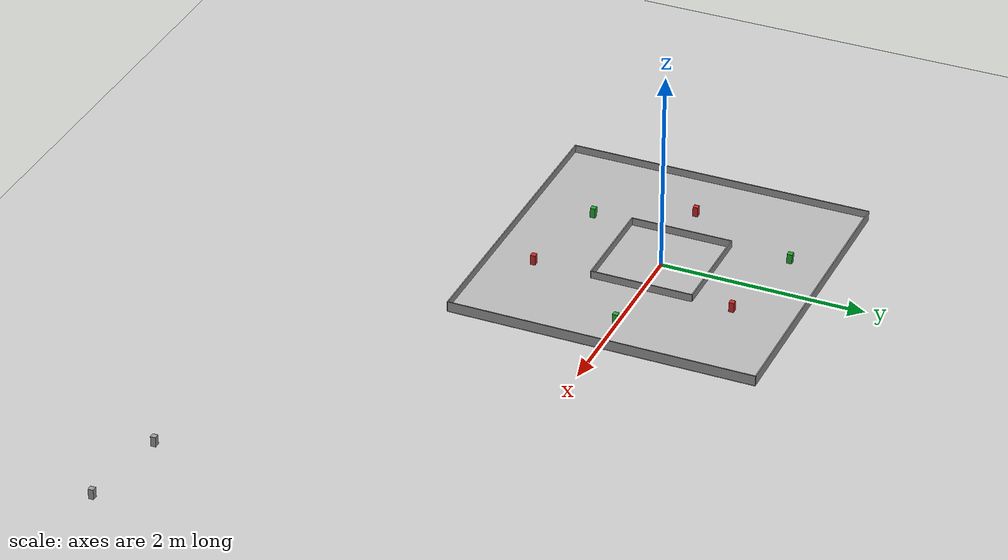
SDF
<sdf version="1.7">
 <world name="default">
  <light name="sun" type="directional">
   <pose>0 0 10 0 -0 0</pose>
   <diffuse>0.8 0.8 0.8 1</diffuse>
   <specular>0.2 0.2 0.2 1</specular>
   <attenuation>
    <range>1000</range>
    <constant>0.9</constant>
    <linear>0.01</linear>
    <quadratic>0.001</quadratic>
   </attenuation>
   <direction>-0.5 0.1 -0.9</direction>
   <spot><inner_angle>0</inner_angle><outer_angle>0</outer_angle><falloff>0</falloff></spot>
  </light>
  <model name="ground_plane">
   <static>1</static>
   <link name="link">
    <collision name="collision">
     <geometry><plane><normal>0 0 1</normal><size>100 100</size></plane></geometry>
     <surface><friction><ode><mu>100</mu><mu2>50</mu2></ode></friction></surface>
    </collision>
    <visual name="visual">
     <cast_shadows>0</cast_shadows>
     <geometry><plane><normal>0 0 1</normal><size>100 100</size></plane></geometry>
     <material>
      <script><uri>file://media/materials/scripts/gazebo.material</uri><name>Gazebo/Grey</name></script>
     </material>
    </visual>
   </link>
  </model>
  <gravity>0 0 -9.8</gravity>
  <magnetic_field>6e-06 2.3e-05 -4.2e-05</magnetic_field>
  <atmosphere type="adiabatic"/>
  <physics type="ode">
   <max_step_size>0.001</max_step_size>
   <real_time_factor>1</real_time_factor>
   <real_time_update_rate>1000</real_time_update_rate>
  </physics>
  <scene><ambient>0.4 0.4 0.4 1</ambient><background>0.7 0.7 0.7 1</background><shadows>1</shadows></scene>
  <audio><device>default</device></audio>
  <spherical_coordinates>
   <surface_model>EARTH_WGS84</surface_model>
   <latitude_deg>0</latitude_deg>
   <longitude_deg>0</longitude_deg>
   <elevation>0</elevation>
   <heading_deg>0</heading_deg>
  </spherical_coordinates>
  <model name="wro_platform">
   <static>1</static>
   <link name="platform_link">
    <visual name="platform_visual">
     <geometry><box><size>3 3 0.05</size></box></geometry>
     <material>
      <script>
       <uri>model://wro_texture/materials/scripts</uri>
       <uri>model://wro_texture/materials/textures</uri>
       <name>wro/field</name>
      </script>
     </material>
    </visual>
    <collision name="platform_collision"><geometry><box><size>3 3 0.05</size></box></geometry></collision>
   </link>
  </model>
  <model name="WRO_FIELD_2025">
   <link name="link_1">
    <inertial>
     <mass>1</mass>
     <inertia>
      <ixx>0.166667</ixx>
      <ixy>0</ixy>
      <ixz>0</ixz>
      <iyy>0.166667</iyy>
      <iyz>0</iyz>
      <izz>0.166667</izz>
     </inertia>
    </inertial>
    <pose>0 1.5 0.05 0 -0 0</pose>
    <self_collide>1</self_collide>
    <visual name="visual">
     <geometry><box><size>3 0.01 0.1</size></box></geometry>
     <material>
      <lighting>1</lighting>
      <script><uri>file://media/materials/scripts/gazebo.material</uri><name>Gazebo/Grey</name></script>
      <shader type="pixel"><normal_map>__default__</normal_map></shader>
      <ambient>0.3 0.3 0.3 1</ambient>
      <diffuse>0.7 0.7 0.7 1</diffuse>
      <specular>0.01 0.01 0.01 1</specular>
      <emissive>0 0 0 1</emissive>
     </material>
    </visual>
    <collision name="collision_1">
     <geometry><box><size>3 0.01 0.1</size></box></geometry>
     <surface>
      <friction>
       <ode><mu>1</mu><mu2>1</mu2><fdir1>0 0 0</fdir1><slip1>0</slip1><slip2>0</slip2></ode>
       <torsional>
        <coefficient>1</coefficient>
        <patch_radius>0</patch_radius>
        <surface_radius>0</surface_radius>
        <use_patch_radius>1</use_patch_radius>
        <ode><slip>0</slip></ode>
       </torsional>
      </friction>
      <bounce><restitution_coefficient>0</restitution_coefficient><threshold>1e+06</threshold></bounce>
      <contact>
       <collide_without_contact>0</collide_without_contact>
       <collide_without_contact_bitmask>1</collide_without_contact_bitmask>
       <collide_bitmask>1</collide_bitmask>
       <ode>
        <soft_cfm>0</soft_cfm>
        <soft_erp>0.2</soft_erp>
        <kp>1e+13</kp>
        <kd>1</kd>
        <max_vel>0.01</max_vel>
        <min_depth>0</min_depth>
       </ode>
       <bullet>
        <split_impulse>1</split_impulse>
        <split_impulse_penetration_threshold>-0.01</split_impulse_penetration_threshold>
        <soft_cfm>0</soft_cfm>
        <soft_erp>0.2</soft_erp>
        <kp>1e+13</kp>
        <kd>1</kd>
       </bullet>
      </contact>
     </surface>
    </collision>
   </link>
   <link name="link_1_clone">
    <inertial>
     <mass>1</mass>
     <inertia>
      <ixx>0.166667</ixx>
      <ixy>0</ixy>
      <ixz>0</ixz>
      <iyy>0.166667</iyy>
      <iyz>0</iyz>
      <izz>0.166667</izz>
     </inertia>
    </inertial>
    <pose>-1.5 0 0.05 0 -0 1.5708</pose>
    <visual name="visual">
     <geometry><box><size>3 0.01 0.1</size></box></geometry>
     <material>
      <lighting>1</lighting>
      <script><uri>file://media/materials/scripts/gazebo.material</uri><name>Gazebo/Grey</name></script>
      <shader type="pixel"><normal_map>__default__</normal_map></shader>
      <ambient>0.3 0.3 0.3 1</ambient>
      <diffuse>0.7 0.7 0.7 1</diffuse>
      <specular>0.01 0.01 0.01 1</specular>
      <emissive>0 0 0 1</emissive>
     </material>
    </visual>
    <collision name="collision_1">
     <geometry><box><size>3 0.01 0.1</size></box></geometry>
     <surface>
      <friction>
       <ode><mu>1</mu><mu2>1</mu2><fdir1>0 0 0</fdir1><slip1>0</slip1><slip2>0</slip2></ode>
       <torsional>
        <coefficient>1</coefficient>
        <patch_radius>0</patch_radius>
        <surface_radius>0</surface_radius>
        <use_patch_radius>1</use_patch_radius>
        <ode><slip>0</slip></ode>
       </torsional>
      </friction>
      <bounce><restitution_coefficient>0</restitution_coefficient><threshold>1e+06</threshold></bounce>
      <contact>
       <collide_without_contact>0</collide_without_contact>
       <collide_without_contact_bitmask>1</collide_without_contact_bitmask>
       <collide_bitmask>1</collide_bitmask>
       <ode>
        <soft_cfm>0</soft_cfm>
        <soft_erp>0.2</soft_erp>
        <kp>1e+13</kp>
        <kd>1</kd>
        <max_vel>0.01</max_vel>
        <min_depth>0</min_depth>
       </ode>
       <bullet>
        <split_impulse>1</split_impulse>
        <split_impulse_penetration_threshold>-0.01</split_impulse_penetration_threshold>
        <soft_cfm>0</soft_cfm>
        <soft_erp>0.2</soft_erp>
        <kp>1e+13</kp>
        <kd>1</kd>
       </bullet>
      </contact>
     </surface>
    </collision>
   </link>
   <link name="link_1_clone_0">
    <inertial>
     <mass>1</mass>
     <inertia>
      <ixx>0.166667</ixx>
      <ixy>0</ixy>
      <ixz>0</ixz>
      <iyy>0.166667</iyy>
      <iyz>0</iyz>
      <izz>0.166667</izz>
     </inertia>
    </inertial>
    <pose>1.5 0 0.05 0 -0 1.5708</pose>
    <visual name="visual">
     <geometry><box><size>3 0.01 0.1</size></box></geometry>
     <material>
      <lighting>1</lighting>
      <script><uri>file://media/materials/scripts/gazebo.material</uri><name>Gazebo/Grey</name></script>
      <shader type="pixel"><normal_map>__default__</normal_map></shader>
      <ambient>0.3 0.3 0.3 1</ambient>
      <diffuse>0.7 0.7 0.7 1</diffuse>
      <specular>0.01 0.01 0.01 1</specular>
      <emissive>0 0 0 1</emissive>
     </material>
    </visual>
    <collision name="collision_1">
     <geometry><box><size>3 0.01 0.1</size></box></geometry>
     <surface>
      <friction>
       <ode><mu>1</mu><mu2>1</mu2><fdir1>0 0 0</fdir1><slip1>0</slip1><slip2>0</slip2></ode>
       <torsional>
        <coefficient>1</coefficient>
        <patch_radius>0</patch_radius>
        <surface_radius>0</surface_radius>
        <use_patch_radius>1</use_patch_radius>
        <ode><slip>0</slip></ode>
       </torsional>
      </friction>
      <bounce><restitution_coefficient>0</restitution_coefficient><threshold>1e+06</threshold></bounce>
      <contact>
       <collide_without_contact>0</collide_without_contact>
       <collide_without_contact_bitmask>1</collide_without_contact_bitmask>
       <collide_bitmask>1</collide_bitmask>
       <ode>
        <soft_cfm>0</soft_cfm>
        <soft_erp>0.2</soft_erp>
        <kp>1e+13</kp>
        <kd>1</kd>
        <max_vel>0.01</max_vel>
        <min_depth>0</min_depth>
       </ode>
       <bullet>
        <split_impulse>1</split_impulse>
        <split_impulse_penetration_threshold>-0.01</split_impulse_penetration_threshold>
        <soft_cfm>0</soft_cfm>
        <soft_erp>0.2</soft_erp>
        <kp>1e+13</kp>
        <kd>1</kd>
       </bullet>
      </contact>
     </surface>
    </collision>
   </link>
   <link name="link_1_clone_0_clone">
    <inertial>
     <mass>1</mass>
     <inertia>
      <ixx>0.166667</ixx>
      <ixy>0</ixy>
      <ixz>0</ixz>
      <iyy>0.166667</iyy>
      <iyz>0</iyz>
      <izz>0.166667</izz>
     </inertia>
    </inertial>
    <pose>0.5 0 0.05 0 -0 1.5708</pose>
    <visual name="visual">
     <geometry><box><size>1 0.01 0.1</size></box></geometry>
     <material>
      <lighting>1</lighting>
      <script><uri>file://media/materials/scripts/gazebo.material</uri><name>Gazebo/Grey</name></script>
      <shader type="pixel"><normal_map>__default__</normal_map></shader>
      <ambient>0.3 0.3 0.3 1</ambient>
      <diffuse>0.7 0.7 0.7 1</diffuse>
      <specular>0.01 0.01 0.01 1</specular>
      <emissive>0 0 0 1</emissive>
     </material>
    </visual>
    <collision name="collision_2">
     <geometry><box><size>1 0.01 0.1</size></box></geometry>
     <surface>
      <friction>
       <ode><mu>1</mu><mu2>1</mu2><fdir1>0 0 0</fdir1><slip1>0</slip1><slip2>0</slip2></ode>
       <torsional>
        <coefficient>1</coefficient>
        <patch_radius>0</patch_radius>
        <surface_radius>0</surface_radius>
        <use_patch_radius>1</use_patch_radius>
        <ode><slip>0</slip></ode>
       </torsional>
      </friction>
      <bounce><restitution_coefficient>0</restitution_coefficient><threshold>1e+06</threshold></bounce>
      <contact>
       <collide_without_contact>0</collide_without_contact>
       <collide_without_contact_bitmask>1</collide_without_contact_bitmask>
       <collide_bitmask>1</collide_bitmask>
       <ode>
        <soft_cfm>0</soft_cfm>
        <soft_erp>0.2</soft_erp>
        <kp>1e+13</kp>
        <kd>1</kd>
        <max_vel>0.01</max_vel>
        <min_depth>0</min_depth>
       </ode>
       <bullet>
        <split_impulse>1</split_impulse>
        <split_impulse_penetration_threshold>-0.01</split_impulse_penetration_threshold>
        <soft_cfm>0</soft_cfm>
        <soft_erp>0.2</soft_erp>
        <kp>1e+13</kp>
        <kd>1</kd>
       </bullet>
      </contact>
     </surface>
    </collision>
   </link>
   <link name="link_1_clone_1">
    <inertial>
     <mass>1</mass>
     <inertia>
      <ixx>0.166667</ixx>
      <ixy>0</ixy>
      <ixz>0</ixz>
      <iyy>0.166667</iyy>
      <iyz>0</iyz>
      <izz>0.166667</izz>
     </inertia>
    </inertial>
    <pose>0 -1.5 0.05 0 0 -3.14139</pose>
    <visual name="visual">
     <geometry><box><size>3 0.01 0.1</size></box></geometry>
     <material>
      <lighting>1</lighting>
      <script><uri>file://media/materials/scripts/gazebo.material</uri><name>Gazebo/Grey</name></script>
      <shader type="pixel"><normal_map>__default__</normal_map></shader>
      <ambient>0.3 0.3 0.3 1</ambient>
      <diffuse>0.7 0.7 0.7 1</diffuse>
      <specular>0.01 0.01 0.01 1</specular>
      <emissive>0 0 0 1</emissive>
     </material>
    </visual>
    <collision name="collision_1">
     <geometry><box><size>3 0.01 0.1</size></box></geometry>
     <surface>
      <friction>
       <ode><mu>1</mu><mu2>1</mu2><fdir1>0 0 0</fdir1><slip1>0</slip1><slip2>0</slip2></ode>
       <torsional>
        <coefficient>1</coefficient>
        <patch_radius>0</patch_radius>
        <surface_radius>0</surface_radius>
        <use_patch_radius>1</use_patch_radius>
        <ode><slip>0</slip></ode>
       </torsional>
      </friction>
      <bounce><restitution_coefficient>0</restitution_coefficient><threshold>1e+06</threshold></bounce>
      <contact>
       <collide_without_contact>0</collide_without_contact>
       <collide_without_contact_bitmask>1</collide_without_contact_bitmask>
       <collide_bitmask>1</collide_bitmask>
       <ode>
        <soft_cfm>0</soft_cfm>
        <soft_erp>0.2</soft_erp>
        <kp>1e+13</kp>
        <kd>1</kd>
        <max_vel>0.01</max_vel>
        <min_depth>0</min_depth>
       </ode>
       <bullet>
        <split_impulse>1</split_impulse>
        <split_impulse_penetration_threshold>-0.01</split_impulse_penetration_threshold>
        <soft_cfm>0</soft_cfm>
        <soft_erp>0.2</soft_erp>
        <kp>1e+13</kp>
        <kd>1</kd>
       </bullet>
      </contact>
     </surface>
    </collision>
   </link>
   <link name="link_1_clone_1_clone">
    <inertial>
     <mass>1</mass>
     <inertia>
      <ixx>0.166667</ixx>
      <ixy>0</ixy>
      <ixz>0</ixz>
      <iyy>0.166667</iyy>
      <iyz>0</iyz>
      <izz>0.166667</izz>
     </inertia>
    </inertial>
    <pose>0 -0.5 0.05 0 0 -3.14139</pose>
    <visual name="visual">
     <geometry><box><size>1 0.01 0.1</size></box></geometry>
     <material>
      <lighting>1</lighting>
      <script><uri>file://media/materials/scripts/gazebo.material</uri><name>Gazebo/Grey</name></script>
      <shader type="pixel"><normal_map>__default__</normal_map></shader>
      <ambient>0.3 0.3 0.3 1</ambient>
      <diffuse>0.7 0.7 0.7 1</diffuse>
      <specular>0.01 0.01 0.01 1</specular>
      <emissive>0 0 0 1</emissive>
     </material>
    </visual>
    <collision name="collision_2">
     <geometry><box><size>1 0.01 0.1</size></box></geometry>
     <surface>
      <friction>
       <ode><mu>1</mu><mu2>1</mu2><fdir1>0 0 0</fdir1><slip1>0</slip1><slip2>0</slip2></ode>
       <torsional>
        <coefficient>1</coefficient>
        <patch_radius>0</patch_radius>
        <surface_radius>0</surface_radius>
        <use_patch_radius>1</use_patch_radius>
        <ode><slip>0</slip></ode>
       </torsional>
      </friction>
      <bounce><restitution_coefficient>0</restitution_coefficient><threshold>1e+06</threshold></bounce>
      <contact>
       <collide_without_contact>0</collide_without_contact>
       <collide_without_contact_bitmask>1</collide_without_contact_bitmask>
       <collide_bitmask>1</collide_bitmask>
       <ode>
        <soft_cfm>0</soft_cfm>
        <soft_erp>0.2</soft_erp>
        <kp>1e+13</kp>
        <kd>1</kd>
        <max_vel>0.01</max_vel>
        <min_depth>0</min_depth>
       </ode>
       <bullet>
        <split_impulse>1</split_impulse>
        <split_impulse_penetration_threshold>-0.01</split_impulse_penetration_threshold>
        <soft_cfm>0</soft_cfm>
        <soft_erp>0.2</soft_erp>
        <kp>1e+13</kp>
        <kd>1</kd>
       </bullet>
      </contact>
     </surface>
    </collision>
   </link>
   <link name="link_1_clone_2">
    <inertial>
     <mass>1</mass>
     <inertia>
      <ixx>0.166667</ixx>
      <ixy>0</ixy>
      <ixz>0</ixz>
      <iyy>0.166667</iyy>
      <iyz>0</iyz>
      <izz>0.166667</izz>
     </inertia>
    </inertial>
    <pose>0 0.5 0.05 0 -0 0</pose>
    <visual name="visual">
     <geometry><box><size>1 0.01 0.1</size></box></geometry>
     <material>
      <lighting>1</lighting>
      <script><uri>file://media/materials/scripts/gazebo.material</uri><name>Gazebo/Grey</name></script>
      <shader type="pixel"><normal_map>__default__</normal_map></shader>
      <ambient>0.3 0.3 0.3 1</ambient>
      <diffuse>0.7 0.7 0.7 1</diffuse>
      <specular>0.01 0.01 0.01 1</specular>
      <emissive>0 0 0 1</emissive>
     </material>
    </visual>
    <collision name="collision_2">
     <geometry><box><size>1 0.01 0.1</size></box></geometry>
     <surface>
      <friction>
       <ode><mu>1</mu><mu2>1</mu2><fdir1>0 0 0</fdir1><slip1>0</slip1><slip2>0</slip2></ode>
       <torsional>
        <coefficient>1</coefficient>
        <patch_radius>0</patch_radius>
        <surface_radius>0</surface_radius>
        <use_patch_radius>1</use_patch_radius>
        <ode><slip>0</slip></ode>
       </torsional>
      </friction>
      <bounce><restitution_coefficient>0</restitution_coefficient><threshold>1e+06</threshold></bounce>
      <contact>
       <collide_without_contact>0</collide_without_contact>
       <collide_without_contact_bitmask>1</collide_without_contact_bitmask>
       <collide_bitmask>1</collide_bitmask>
       <ode>
        <soft_cfm>0</soft_cfm>
        <soft_erp>0.2</soft_erp>
        <kp>1e+13</kp>
        <kd>1</kd>
        <max_vel>0.01</max_vel>
        <min_depth>0</min_depth>
       </ode>
       <bullet>
        <split_impulse>1</split_impulse>
        <split_impulse_penetration_threshold>-0.01</split_impulse_penetration_threshold>
        <soft_cfm>0</soft_cfm>
        <soft_erp>0.2</soft_erp>
        <kp>1e+13</kp>
        <kd>1</kd>
       </bullet>
      </contact>
     </surface>
    </collision>
   </link>
   <link name="link_1_clone_clone">
    <inertial>
     <mass>1</mass>
     <inertia>
      <ixx>0.166667</ixx>
      <ixy>0</ixy>
      <ixz>0</ixz>
      <iyy>0.166667</iyy>
      <iyz>0</iyz>
      <izz>0.166667</izz>
     </inertia>
    </inertial>
    <pose>-0.5 0 0.05 0 -0 1.5708</pose>
    <visual name="visual">
     <geometry><box><size>1 0.01 0.1</size></box></geometry>
     <material>
      <lighting>1</lighting>
      <script><uri>file://media/materials/scripts/gazebo.material</uri><name>Gazebo/Grey</name></script>
      <shader type="pixel"><normal_map>__default__</normal_map></shader>
      <ambient>0.3 0.3 0.3 1</ambient>
      <diffuse>0.7 0.7 0.7 1</diffuse>
      <specular>0.01 0.01 0.01 1</specular>
      <emissive>0 0 0 1</emissive>
     </material>
    </visual>
    <collision name="collision_2">
     <geometry><box><size>1 0.01 0.1</size></box></geometry>
     <surface>
      <friction>
       <ode><mu>1</mu><mu2>1</mu2><fdir1>0 0 0</fdir1><slip1>0</slip1><slip2>0</slip2></ode>
       <torsional>
        <coefficient>1</coefficient>
        <patch_radius>0</patch_radius>
        <surface_radius>0</surface_radius>
        <use_patch_radius>1</use_patch_radius>
        <ode><slip>0</slip></ode>
       </torsional>
      </friction>
      <bounce><restitution_coefficient>0</restitution_coefficient><threshold>1e+06</threshold></bounce>
      <contact>
       <collide_without_contact>0</collide_without_contact>
       <collide_without_contact_bitmask>1</collide_without_contact_bitmask>
       <collide_bitmask>1</collide_bitmask>
       <ode>
        <soft_cfm>0</soft_cfm>
        <soft_erp>0.2</soft_erp>
        <kp>1e+13</kp>
        <kd>1</kd>
        <max_vel>0.01</max_vel>
        <min_depth>0</min_depth>
       </ode>
       <bullet>
        <split_impulse>1</split_impulse>
        <split_impulse_penetration_threshold>-0.01</split_impulse_penetration_threshold>
        <soft_cfm>0</soft_cfm>
        <soft_erp>0.2</soft_erp>
        <kp>1e+13</kp>
        <kd>1</kd>
       </bullet>
      </contact>
     </surface>
    </collision>
   </link>
   <static>1</static>
  </model>
  <model name="block_clone">
   <model name="block">
    <link name="link_0">
     <inertial>
      <mass>1</mass>
      <inertia>
       <ixx>0.166667</ixx>
       <ixy>0</ixy>
       <ixz>0</ixz>
       <iyy>0.166667</iyy>
       <iyz>0</iyz>
       <izz>0.166667</izz>
      </inertia>
     </inertial>
     <pose>3.90384 -1.45755 -1.3e-05 3e-06 4e-06 -0</pose>
     <visual name="visual">
      <geometry><box><size>0.05 0.05 0.1</size></box></geometry>
      <material>
       <lighting>1</lighting>
       <script><uri>file://media/materials/scripts/gazebo.material</uri><name>Gazebo/Grey</name></script>
       <shader type="pixel"><normal_map>__default__</normal_map></shader>
       <ambient>0.3 0.3 0.3 1</ambient>
       <diffuse>0.7 0.7 0.7 1</diffuse>
       <specular>0.01 0.01 0.01 1</specular>
       <emissive>0 0 0 1</emissive>
      </material>
     </visual>
     <collision name="collision_1">
      <geometry><box><size>0.05 0.05 0.1</size></box></geometry>
      <surface>
       <friction>
        <ode><mu>1</mu><mu2>1</mu2><fdir1>0 0 0</fdir1><slip1>0</slip1><slip2>0</slip2></ode>
        <torsional>
         <coefficient>1</coefficient>
         <patch_radius>0</patch_radius>
         <surface_radius>0</surface_radius>
         <use_patch_radius>1</use_patch_radius>
         <ode><slip>0</slip></ode>
        </torsional>
       </friction>
       <bounce><restitution_coefficient>0</restitution_coefficient><threshold>1e+06</threshold></bounce>
       <contact>
        <collide_without_contact>0</collide_without_contact>
        <collide_without_contact_bitmask>1</collide_without_contact_bitmask>
        <collide_bitmask>1</collide_bitmask>
        <ode>
         <soft_cfm>0</soft_cfm>
         <soft_erp>0.2</soft_erp>
         <kp>1e+13</kp>
         <kd>1</kd>
         <max_vel>0.01</max_vel>
         <min_depth>0</min_depth>
        </ode>
        <bullet>
         <split_impulse>1</split_impulse>
         <split_impulse_penetration_threshold>-0.01</split_impulse_penetration_threshold>
         <soft_cfm>0</soft_cfm>
         <soft_erp>0.2</soft_erp>
         <kp>1e+13</kp>
         <kd>1</kd>
        </bullet>
       </contact>
      </surface>
     </collision>
    </link>
    <static>0</static>
    <pose>1.23204 -0.655598 -7e-06 0 -0 0</pose>
   </model>
   <static>1</static>
   <pose>0.213937 -0.976065 0.049725 -4e-06 -5.6e-05 1.4e-05</pose>
  </model>
  <model name="block_clone_0">
   <model name="block">
    <link name="link_0">
     <inertial>
      <mass>1</mass>
      <inertia>
       <ixx>0.166667</ixx>
       <ixy>0</ixy>
       <ixz>0</ixz>
       <iyy>0.166667</iyy>
       <iyz>0</iyz>
       <izz>0.166667</izz>
      </inertia>
     </inertial>
     <pose>3.90384 -1.45755 -1.3e-05 3e-06 4e-06 -0</pose>
     <visual name="visual">
      <geometry><box><size>0.05 0.05 0.1</size></box></geometry>
      <material>
       <lighting>1</lighting>
       <script><uri>file://media/materials/scripts/gazebo.material</uri><name>Gazebo/Grey</name></script>
       <shader type="pixel"><normal_map>__default__</normal_map></shader>
       <ambient>0.3 0.3 0.3 1</ambient>
       <diffuse>0.7 0.7 0.7 1</diffuse>
       <specular>0.01 0.01 0.01 1</specular>
       <emissive>0 0 0 1</emissive>
      </material>
     </visual>
     <collision name="collision_1">
      <geometry><box><size>0.05 0.05 0.1</size></box></geometry>
      <surface>
       <friction>
        <ode><mu>1</mu><mu2>1</mu2><fdir1>0 0 0</fdir1><slip1>0</slip1><slip2>0</slip2></ode>
        <torsional>
         <coefficient>1</coefficient>
         <patch_radius>0</patch_radius>
         <surface_radius>0</surface_radius>
         <use_patch_radius>1</use_patch_radius>
         <ode><slip>0</slip></ode>
        </torsional>
       </friction>
       <bounce><restitution_coefficient>0</restitution_coefficient><threshold>1e+06</threshold></bounce>
       <contact>
        <collide_without_contact>0</collide_without_contact>
        <collide_without_contact_bitmask>1</collide_without_contact_bitmask>
        <collide_bitmask>1</collide_bitmask>
        <ode>
         <soft_cfm>0</soft_cfm>
         <soft_erp>0.2</soft_erp>
         <kp>1e+13</kp>
         <kd>1</kd>
         <max_vel>0.01</max_vel>
         <min_depth>0</min_depth>
        </ode>
        <bullet>
         <split_impulse>1</split_impulse>
         <split_impulse_penetration_threshold>-0.01</split_impulse_penetration_threshold>
         <soft_cfm>0</soft_cfm>
         <soft_erp>0.2</soft_erp>
         <kp>1e+13</kp>
         <kd>1</kd>
        </bullet>
       </contact>
      </surface>
     </collision>
    </link>
    <static>0</static>
    <pose>1.23204 -0.655598 -7e-06 0 -0 0</pose>
   </model>
   <static>1</static>
   <pose>-0.686131 -0.850686 0.04829 -3e-06 -0.000337 1.7e-05</pose>
  </model>
  <model name="block_red">
   <model name="block_0">
    <model name="block">
     <link name="link_0">
      <inertial>
       <mass>1</mass>
       <inertia>
        <ixx>0.166667</ixx>
        <ixy>0</ixy>
        <ixz>0</ixz>
        <iyy>0.166667</iyy>
        <iyz>0</iyz>
        <izz>0.166667</izz>
       </inertia>
      </inertial>
      <self_collide>1</self_collide>
      <visual name="visual">
       <geometry><box><size>0.05 0.05 0.1</size></box></geometry>
       <material>
        <lighting>1</lighting>
        <script><uri>file://media/materials/scripts/gazebo.material</uri><name>Gazebo/Red</name></script>
        <shader type="pixel"><normal_map>__default__</normal_map></shader>
        <ambient>1 0 0 1</ambient>
        <diffuse>1 0 0 1</diffuse>
        <specular>0.01 0.01 0.01 1</specular>
        <emissive>0 0 0 1</emissive>
       </material>
      </visual>
      <collision name="collision_1">
       <geometry><box><size>0.05 0.05 0.1</size></box></geometry>
       <surface>
        <friction>
         <ode><mu>1</mu><mu2>1</mu2><fdir1>0 0 0</fdir1><slip1>0</slip1><slip2>0</slip2></ode>
         <torsional>
          <coefficient>1</coefficient>
          <patch_radius>0</patch_radius>
          <surface_radius>0</surface_radius>
          <use_patch_radius>1</use_patch_radius>
          <ode><slip>0</slip></ode>
         </torsional>
        </friction>
        <bounce><restitution_coefficient>0</restitution_coefficient><threshold>1e+06</threshold></bounce>
        <contact>
         <collide_without_contact>0</collide_without_contact>
         <collide_without_contact_bitmask>1</collide_without_contact_bitmask>
         <collide_bitmask>1</collide_bitmask>
         <ode>
          <soft_cfm>0</soft_cfm>
          <soft_erp>0.2</soft_erp>
          <kp>1e+13</kp>
          <kd>1</kd>
          <max_vel>0.01</max_vel>
          <min_depth>0</min_depth>
         </ode>
         <bullet>
          <split_impulse>1</split_impulse>
          <split_impulse_penetration_threshold>-0.01</split_impulse_penetration_threshold>
          <soft_cfm>0</soft_cfm>
          <soft_erp>0.2</soft_erp>
          <kp>1e+13</kp>
          <kd>1</kd>
         </bullet>
        </contact>
       </surface>
      </collision>
     </link>
     <static>0</static>
    </model>
    <static>1</static>
   </model>
   <static>1</static>
   <pose>0.490611 -1.07901 0.075005 -3e-06 0.000194 0.001213</pose>
  </model>
  <model name="block_green">
   <model name="block_0">
    <model name="block">
     <link name="link_0">
      <inertial>
       <mass>1</mass>
       <inertia>
        <ixx>0.166667</ixx>
        <ixy>0</ixy>
        <ixz>0</ixz>
        <iyy>0.166667</iyy>
        <iyz>0</iyz>
        <izz>0.166667</izz>
       </inertia>
      </inertial>
      <self_collide>1</self_collide>
      <visual name="visual">
       <geometry><box><size>0.05 0.05 0.1</size></box></geometry>
       <material>
        <lighting>1</lighting>
        <script><uri>file://media/materials/scripts/gazebo.material</uri><name>Gazebo/Green</name></script>
        <shader type="pixel"><normal_map>__default__</normal_map></shader>
        <ambient>0 1 0 1</ambient>
        <diffuse>0 1 0 1</diffuse>
        <specular>0.01 0.01 0.01 1</specular>
        <emissive>0 0 0 1</emissive>
       </material>
      </visual>
      <collision name="collision_1">
       <geometry><box><size>0.05 0.05 0.1</size></box></geometry>
       <surface>
        <friction>
         <ode><mu>1</mu><mu2>1</mu2><fdir1>0 0 0</fdir1><slip1>0</slip1><slip2>0</slip2></ode>
         <torsional>
          <coefficient>1</coefficient>
          <patch_radius>0</patch_radius>
          <surface_radius>0</surface_radius>
          <use_patch_radius>1</use_patch_radius>
          <ode><slip>0</slip></ode>
         </torsional>
        </friction>
        <bounce><restitution_coefficient>0</restitution_coefficient><threshold>1e+06</threshold></bounce>
        <contact>
         <collide_without_contact>0</collide_without_contact>
         <collide_without_contact_bitmask>1</collide_without_contact_bitmask>
         <collide_bitmask>1</collide_bitmask>
         <ode>
          <soft_cfm>0</soft_cfm>
          <soft_erp>0.2</soft_erp>
          <kp>1e+13</kp>
          <kd>1</kd>
          <max_vel>0.01</max_vel>
          <min_depth>0</min_depth>
         </ode>
         <bullet>
          <split_impulse>1</split_impulse>
          <split_impulse_penetration_threshold>-0.01</split_impulse_penetration_threshold>
          <soft_cfm>0</soft_cfm>
          <soft_erp>0.2</soft_erp>
          <kp>1e+13</kp>
          <kd>1</kd>
         </bullet>
        </contact>
       </surface>
      </collision>
     </link>
     <static>0</static>
    </model>
    <static>1</static>
   </model>
   <static>1</static>
   <pose>-0.486462 -0.887281 0.074999 1e-06 0.000177 0.001413</pose>
  </model>
  <model name="block_green_0">
   <model name="block_0">
    <model name="block">
     <link name="link_0">
      <inertial>
       <mass>1</mass>
       <inertia>
        <ixx>0.166667</ixx>
        <ixy>0</ixy>
        <ixz>0</ixz>
        <iyy>0.166667</iyy>
        <iyz>0</iyz>
        <izz>0.166667</izz>
       </inertia>
      </inertial>
      <self_collide>1</self_collide>
      <visual name="visual">
       <geometry><box><size>0.05 0.05 0.1</size></box></geometry>
       <material>
        <lighting>1</lighting>
        <script><uri>file://media/materials/scripts/gazebo.material</uri><name>Gazebo/Green</name></script>
        <shader type="pixel"><normal_map>__default__</normal_map></shader>
        <ambient>0 1 0 1</ambient>
        <diffuse>0 1 0 1</diffuse>
        <specular>0.01 0.01 0.01 1</specular>
        <emissive>0 0 0 1</emissive>
       </material>
      </visual>
      <collision name="collision_1">
       <geometry><box><size>0.05 0.05 0.1</size></box></geometry>
       <surface>
        <friction>
         <ode><mu>1</mu><mu2>1</mu2><fdir1>0 0 0</fdir1><slip1>0</slip1><slip2>0</slip2></ode>
         <torsional>
          <coefficient>1</coefficient>
          <patch_radius>0</patch_radius>
          <surface_radius>0</surface_radius>
          <use_patch_radius>1</use_patch_radius>
          <ode><slip>0</slip></ode>
         </torsional>
        </friction>
        <bounce><restitution_coefficient>0</restitution_coefficient><threshold>1e+06</threshold></bounce>
        <contact>
         <collide_without_contact>0</collide_without_contact>
         <collide_without_contact_bitmask>1</collide_without_contact_bitmask>
         <collide_bitmask>1</collide_bitmask>
         <ode>
          <soft_cfm>0</soft_cfm>
          <soft_erp>0.2</soft_erp>
          <kp>1e+13</kp>
          <kd>1</kd>
          <max_vel>0.01</max_vel>
          <min_depth>0</min_depth>
         </ode>
         <bullet>
          <split_impulse>1</split_impulse>
          <split_impulse_penetration_threshold>-0.01</split_impulse_penetration_threshold>
          <soft_cfm>0</soft_cfm>
          <soft_erp>0.2</soft_erp>
          <kp>1e+13</kp>
          <kd>1</kd>
         </bullet>
        </contact>
       </surface>
      </collision>
     </link>
     <static>0</static>
    </model>
    <static>1</static>
   </model>
   <static>1</static>
   <pose>1.09982 -0.006197 0.074997 0 0.000233 0.00136</pose>
  </model>
  <model name="block_red_0">
   <model name="block_0">
    <model name="block">
     <link name="link_0">
      <inertial>
       <mass>1</mass>
       <inertia>
        <ixx>0.166667</ixx>
        <ixy>0</ixy>
        <ixz>0</ixz>
        <iyy>0.166667</iyy>
        <iyz>0</iyz>
        <izz>0.166667</izz>
       </inertia>
      </inertial>
      <self_collide>1</self_collide>
      <visual name="visual">
       <geometry><box><size>0.05 0.05 0.1</size></box></geometry>
       <material>
        <lighting>1</lighting>
        <script><uri>file://media/materials/scripts/gazebo.material</uri><name>Gazebo/Red</name></script>
        <shader type="pixel"><normal_map>__default__</normal_map></shader>
        <ambient>1 0 0 1</ambient>
        <diffuse>1 0 0 1</diffuse>
        <specular>0.01 0.01 0.01 1</specular>
        <emissive>0 0 0 1</emissive>
       </material>
      </visual>
      <collision name="collision_1">
       <geometry><box><size>0.05 0.05 0.1</size></box></geometry>
       <surface>
        <friction>
         <ode><mu>1</mu><mu2>1</mu2><fdir1>0 0 0</fdir1><slip1>0</slip1><slip2>0</slip2></ode>
         <torsional>
          <coefficient>1</coefficient>
          <patch_radius>0</patch_radius>
          <surface_radius>0</surface_radius>
          <use_patch_radius>1</use_patch_radius>
          <ode><slip>0</slip></ode>
         </torsional>
        </friction>
        <bounce><restitution_coefficient>0</restitution_coefficient><threshold>1e+06</threshold></bounce>
        <contact>
         <collide_without_contact>0</collide_without_contact>
         <collide_without_contact_bitmask>1</collide_without_contact_bitmask>
         <collide_bitmask>1</collide_bitmask>
         <ode>
          <soft_cfm>0</soft_cfm>
          <soft_erp>0.2</soft_erp>
          <kp>1e+13</kp>
          <kd>1</kd>
          <max_vel>0.01</max_vel>
          <min_depth>0</min_depth>
         </ode>
         <bullet>
          <split_impulse>1</split_impulse>
          <split_impulse_penetration_threshold>-0.01</split_impulse_penetration_threshold>
          <soft_cfm>0</soft_cfm>
          <soft_erp>0.2</soft_erp>
          <kp>1e+13</kp>
          <kd>1</kd>
         </bullet>
        </contact>
       </surface>
      </collision>
     </link>
     <static>0</static>
    </model>
    <static>1</static>
   </model>
   <static>1</static>
   <pose>-0.893307 -0.006728 0.075002 3e-06 -7.5e-05 0.001281</pose>
  </model>
  <model name="block_red_1">
   <model name="block_0">
    <model name="block">
     <link name="link_0">
      <inertial>
       <mass>1</mass>
       <inertia>
        <ixx>0.166667</ixx>
        <ixy>0</ixy>
        <ixz>0</ixz>
        <iyy>0.166667</iyy>
        <iyz>0</iyz>
        <izz>0.166667</izz>
       </inertia>
      </inertial>
      <self_collide>1</self_collide>
      <visual name="visual">
       <geometry><box><size>0.05 0.05 0.1</size></box></geometry>
       <material>
        <lighting>1</lighting>
        <script><uri>file://media/materials/scripts/gazebo.material</uri><name>Gazebo/Red</name></script>
        <shader type="pixel"><normal_map>__default__</normal_map></shader>
        <ambient>1 0 0 1</ambient>
        <diffuse>1 0 0 1</diffuse>
        <specular>0.01 0.01 0.01 1</specular>
        <emissive>0 0 0 1</emissive>
       </material>
      </visual>
      <collision name="collision_1">
       <geometry><box><size>0.05 0.05 0.1</size></box></geometry>
       <surface>
        <friction>
         <ode><mu>1</mu><mu2>1</mu2><fdir1>0 0 0</fdir1><slip1>0</slip1><slip2>0</slip2></ode>
         <torsional>
          <coefficient>1</coefficient>
          <patch_radius>0</patch_radius>
          <surface_radius>0</surface_radius>
          <use_patch_radius>1</use_patch_radius>
          <ode><slip>0</slip></ode>
         </torsional>
        </friction>
        <bounce><restitution_coefficient>0</restitution_coefficient><threshold>1e+06</threshold></bounce>
        <contact>
         <collide_without_contact>0</collide_without_contact>
         <collide_without_contact_bitmask>1</collide_without_contact_bitmask>
         <collide_bitmask>1</collide_bitmask>
         <ode>
          <soft_cfm>0</soft_cfm>
          <soft_erp>0.2</soft_erp>
          <kp>1e+13</kp>
          <kd>1</kd>
          <max_vel>0.01</max_vel>
          <min_depth>0</min_depth>
         </ode>
         <bullet>
          <split_impulse>1</split_impulse>
          <split_impulse_penetration_threshold>-0.01</split_impulse_penetration_threshold>
          <soft_cfm>0</soft_cfm>
          <soft_erp>0.2</soft_erp>
          <kp>1e+13</kp>
          <kd>1</kd>
         </bullet>
        </contact>
       </surface>
      </collision>
     </link>
     <static>0</static>
    </model>
    <static>1</static>
   </model>
   <static>1</static>
   <pose>0.496846 0.892053 0.075004 -1e-06 -0.000213 0.00133</pose>
  </model>
  <model name="block_green_1">
   <model name="block_0">
    <model name="block">
     <link name="link_0">
      <inertial>
       <mass>1</mass>
       <inertia>
        <ixx>0.166667</ixx>
        <ixy>0</ixy>
        <ixz>0</ixz>
        <iyy>0.166667</iyy>
        <iyz>0</iyz>
        <izz>0.166667</izz>
       </inertia>
      </inertial>
      <self_collide>1</self_collide>
      <visual name="visual">
       <geometry><box><size>0.05 0.05 0.1</size></box></geometry>
       <material>
        <lighting>1</lighting>
        <script><uri>file://media/materials/scripts/gazebo.material</uri><name>Gazebo/Green</name></script>
        <shader type="pixel"><normal_map>__default__</normal_map></shader>
        <ambient>0 1 0 1</ambient>
        <diffuse>0 1 0 1</diffuse>
        <specular>0.01 0.01 0.01 1</specular>
        <emissive>0 0 0 1</emissive>
       </material>
      </visual>
      <collision name="collision_1">
       <geometry><box><size>0.05 0.05 0.1</size></box></geometry>
       <surface>
        <friction>
         <ode><mu>1</mu><mu2>1</mu2><fdir1>0 0 0</fdir1><slip1>0</slip1><slip2>0</slip2></ode>
         <torsional>
          <coefficient>1</coefficient>
          <patch_radius>0</patch_radius>
          <surface_radius>0</surface_radius>
          <use_patch_radius>1</use_patch_radius>
          <ode><slip>0</slip></ode>
         </torsional>
        </friction>
        <bounce><restitution_coefficient>0</restitution_coefficient><threshold>1e+06</threshold></bounce>
        <contact>
         <collide_without_contact>0</collide_without_contact>
         <collide_without_contact_bitmask>1</collide_without_contact_bitmask>
         <collide_bitmask>1</collide_bitmask>
         <ode>
          <soft_cfm>0</soft_cfm>
          <soft_erp>0.2</soft_erp>
          <kp>1e+13</kp>
          <kd>1</kd>
          <max_vel>0.01</max_vel>
          <min_depth>0</min_depth>
         </ode>
         <bullet>
          <split_impulse>1</split_impulse>
          <split_impulse_penetration_threshold>-0.01</split_impulse_penetration_threshold>
          <soft_cfm>0</soft_cfm>
          <soft_erp>0.2</soft_erp>
          <kp>1e+13</kp>
          <kd>1</kd>
         </bullet>
        </contact>
       </surface>
      </collision>
     </link>
     <static>0</static>
    </model>
    <static>1</static>
   </model>
   <static>1</static>
   <pose>-0.480674 1.0926 0.07502 -1e-06 -0.001026 0.001332</pose>
  </model>
 </world>
</sdf>
